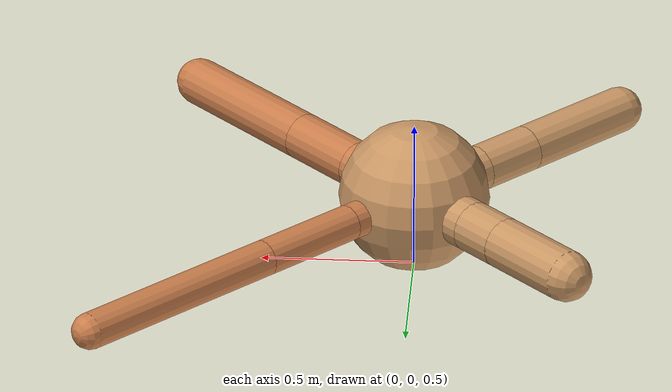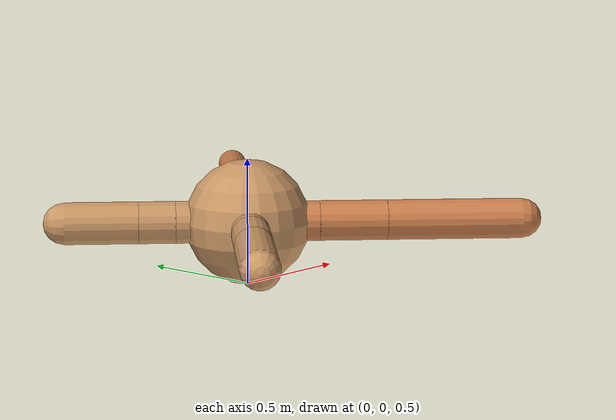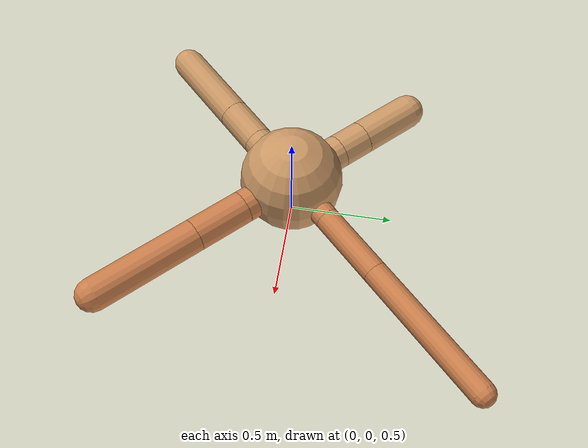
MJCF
<?xml version="1.0" ?>
<mujoco model="ant">

	<compiler angle="degree" coordinate="local" inertiafromgeom="true"/>

	<option integrator="RK4" timestep="0.01"/>

	<custom>

		<numeric data="0.0 0.0 0.55 1.0 0.0 0.0 0.0 0.0 1.0 0.0 -1.0 0.0 -1.0 0.0 1.0" name="init_qpos"/>

	</custom>

	<default>

		<joint armature="1" damping="1" limited="true"/>

		<geom conaffinity="0" condim="3" density="5.0" friction="1.5 0.1 0.1" margin="0.01" rgba="0.8 0.6 0.4 1"/>

	</default>

	<worldbody>

		<body name="torso" pos="0 0 0.75">

			<geom name="torso_geom" pos="0 0 0" size="0.2467317990194276" type="sphere"/>

			<!--joint armature="0" damping="0" limited="false" margin="0.01" name="root" pos="0 0 0" type="free"/-->

			<body name="front_left_leg" pos="0 0 0">

				<geom fromto="0 0 0 0.2 0.2 0" name="aux_1_geom" size="0.059107920929295885" type="capsule" rgba=".8 .5 .3 1"/>

				<body name="aux_1" pos="0.2 0.2 0">

					<joint axis="0 0 1" name="hip_1" pos="0.0 0.0 0.0" range="-40 40" type="hinge"/>

					<geom fromto="0 0 0 0.2509709151617547 0.2509709151617547 0" name="left_leg_geom" size="0.059107920929295885" type="capsule" rgba=".8 .5 .3 1"/>

					<body pos="0.2509709151617547 0.2509709151617547 0" name="front_left_foot">

						<joint axis="-1 1 0" name="ankle_1" pos="0.0 0.0 0.0" range="30 100" type="hinge"/>

						<geom fromto="0 0 0 0.5019418303235094 0.5019418303235094 0" name="left_ankle_geom" size="0.059107920929295885" type="capsule" rgba=".8 .5 .3 1"/>

					</body>

				</body>

			</body>

			<body name="front_right_leg" pos="0 0 0">

				<geom fromto="0 0 0 -0.2 0.2 0" name="aux_2_geom" size="0.08330777238400355" type="capsule"/>

				<body name="aux_2" pos="-0.2 0.2 0">

					<joint axis="0 0 1" name="hip_2" pos="0.0 0.0 0.0" range="-40 40" type="hinge"/>

					<geom fromto="0 0 0 -0.10279085853481328 0.10279085853481328 0" name="right_leg_geom" size="0.08330777238400355" type="capsule"/>

					<body pos="-0.10279085853481328 0.10279085853481328 0" name="front_right_foot">

						<joint axis="1 1 0" name="ankle_2" pos="0.0 0.0 0.0" range="-100 -30" type="hinge"/>

						<geom fromto="0 0 0 -0.20558171706962655 0.20558171706962655 0" name="right_ankle_geom" size="0.08330777238400355" type="capsule"/>

					</body>

				</body>

			</body>

			<body name="left_back_leg" pos="0 0 0">

				<geom fromto="0 0 0 -0.2 -0.2 0" name="aux_3_geom" size="0.07674054308744015" type="capsule"/>

				<body name="aux_3" pos="-0.2 -0.2 0">

					<joint axis="0 0 1" name="hip_3" pos="0.0 0.0 0.0" range="-40 40" type="hinge"/>

					<geom fromto="0 0 0 -0.14992957538482674 -0.14992957538482674 0" name="back_leg_geom" size="0.07674054308744015" type="capsule"/>

					<body pos="-0.14992957538482674 -0.14992957538482674 0" name="left_back_foot">

						<joint axis="-1 1 0" name="ankle_3" pos="0.0 0.0 0.0" range="-100 -30" type="hinge"/>

						<geom fromto="0 0 0 -0.29985915076965347 -0.29985915076965347 0" name="third_ankle_geom" size="0.07674054308744015" type="capsule"/>

					</body>

				</body>

			</body>

			<body name="right_back_leg" pos="0 0 0">

				<geom fromto="0 0 0 0.2 -0.2 0" name="aux_4_geom" size="0.07895663279300302" type="capsule" rgba=".8 .5 .3 1"/>

				<body name="aux_4" pos="0.2 -0.2 0">

					<joint axis="0 0 1" name="hip_4" pos="0.0 0.0 0.0" range="-40 40" type="hinge"/>

					<geom fromto="0 0 0 0.18917460513628442 -0.18917460513628442 0" name="rightback_leg_geom" size="0.07895663279300302" type="capsule" rgba=".8 .5 .3 1"/>

					<body pos="0.18917460513628442 -0.18917460513628442 0" name="right_back_foot">

						<joint axis="1 1 0" name="ankle_4" pos="0.0 0.0 0.0" range="30 100" type="hinge"/>

						<geom fromto="0 0 0 0.37834921027256885 -0.37834921027256885 0" name="fourth_ankle_geom" size="0.07895663279300302" type="capsule" rgba=".8 .5 .3 1"/>

					</body>

				</body>

			</body>

		</body>

	</worldbody>

	<actuator>

		<motor ctrllimited="true" ctrlrange="-1.0 1.0" joint="hip_4" gear="150"/>

		<motor ctrllimited="true" ctrlrange="-1.0 1.0" joint="ankle_4" gear="150"/>

		<motor ctrllimited="true" ctrlrange="-1.0 1.0" joint="hip_1" gear="150"/>

		<motor ctrllimited="true" ctrlrange="-1.0 1.0" joint="ankle_1" gear="150"/>

		<motor ctrllimited="true" ctrlrange="-1.0 1.0" joint="hip_2" gear="150"/>

		<motor ctrllimited="true" ctrlrange="-1.0 1.0" joint="ankle_2" gear="150"/>

		<motor ctrllimited="true" ctrlrange="-1.0 1.0" joint="hip_3" gear="150"/>

		<motor ctrllimited="true" ctrlrange="-1.0 1.0" joint="ankle_3" gear="150"/>

	</actuator>

</mujoco>
